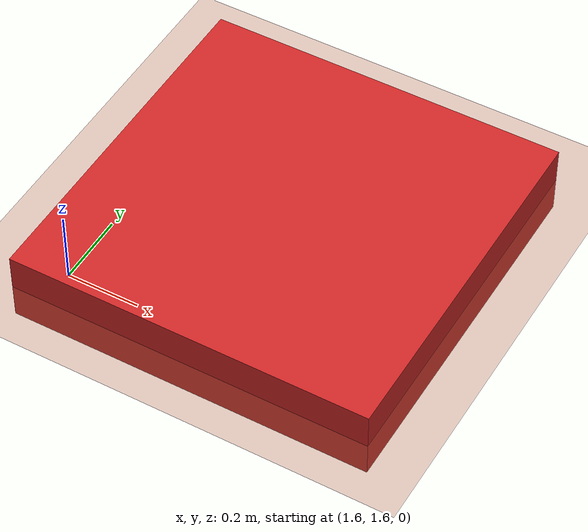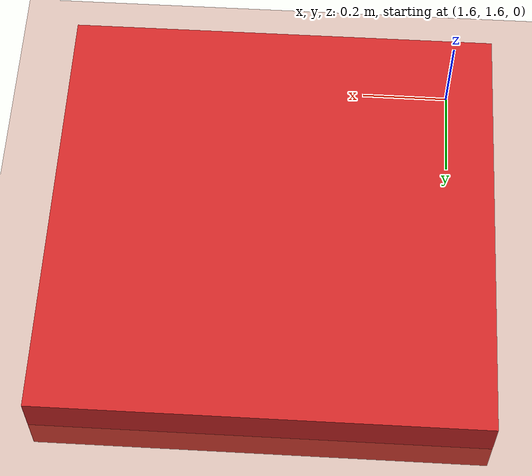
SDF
<sdf version="1.6">
 <world name="default">
  <light name="sun" type="directional">
   <pose>0 0 10 0 -0 0</pose>
   <diffuse>0.8 0.8 0.8 1</diffuse>
   <specular>0.2 0.2 0.2 1</specular>
   <attenuation>
    <range>1000</range>
    <constant>0.9</constant>
    <linear>0.01</linear>
    <quadratic>0.001</quadratic>
   </attenuation>
   <direction>-0.5 0.1 -0.9</direction>
  </light>
  <model name="ground_plane">
   <static>1</static>
   <link name="link">
    <collision name="collision">
     <geometry><plane><normal>0 0 1</normal><size>200 200</size></plane></geometry>
     <surface><friction><ode><mu>100</mu><mu2>50</mu2></ode></friction></surface>
    </collision>
    <visual name="visual">
     <cast_shadows>0</cast_shadows>
     <geometry><plane><normal>0 0 1</normal><size>200 200</size></plane></geometry>
     <material>
      <script><uri>file://media/materials/scripts/gazebo.material</uri><name>Gazebo/Bricks</name></script>
     </material>
    </visual>
   </link>
  </model>
  <gravity>0 0 -9.8</gravity>
  <magnetic_field>6e-06 2.3e-05 -4.2e-05</magnetic_field>
  <atmosphere type="adiabatic"/>
  <physics name="default_physics" default="0" type="ode">
   <max_step_size>0.001</max_step_size>
   <real_time_factor>1</real_time_factor>
   <real_time_update_rate>1000</real_time_update_rate>
  </physics>
  <scene><ambient>0.4 0.4 0.4 1</ambient><background>0.7 0.7 0.7 1</background><shadows>0</shadows></scene>
  <spherical_coordinates>
   <surface_model>EARTH_WGS84</surface_model>
   <latitude_deg>0</latitude_deg>
   <longitude_deg>0</longitude_deg>
   <elevation>0</elevation>
   <heading_deg>0</heading_deg>
  </spherical_coordinates>
  <model name="unit_box">
   <pose>2 2 0 0 0 0</pose>
   <link name="link">
    <collision name="collision"><geometry><box><size>1 1 0.2</size></box></geometry></collision>
    <visual name="visual">
     <geometry><box><size>1 1 0.2</size></box></geometry>
     <material>
      <script><name>Gazebo/Red</name><uri>file://media/materials/scripts/gazebo.material</uri></script>
     </material>
    </visual>
   </link>
  </model>
 </world>
</sdf>
